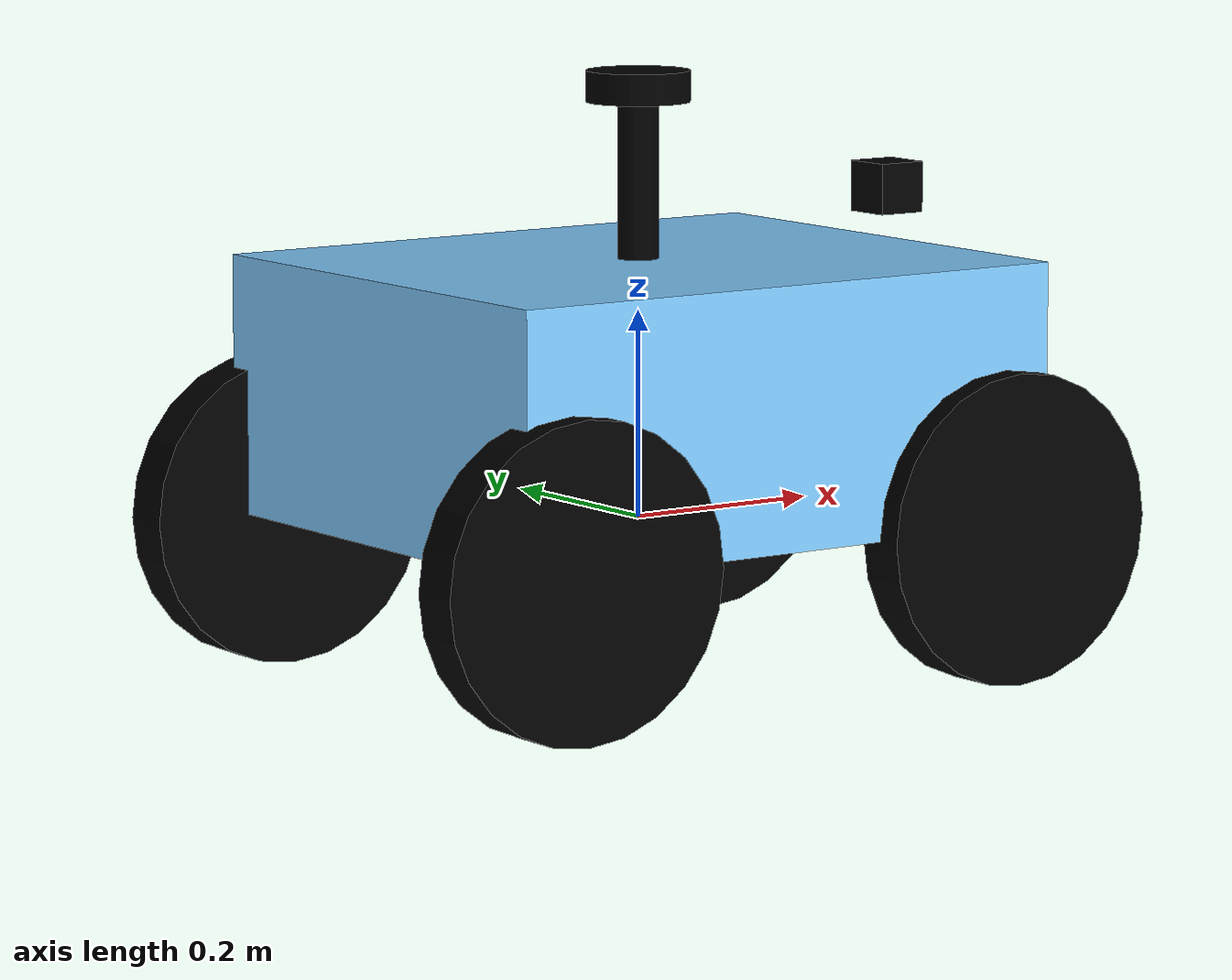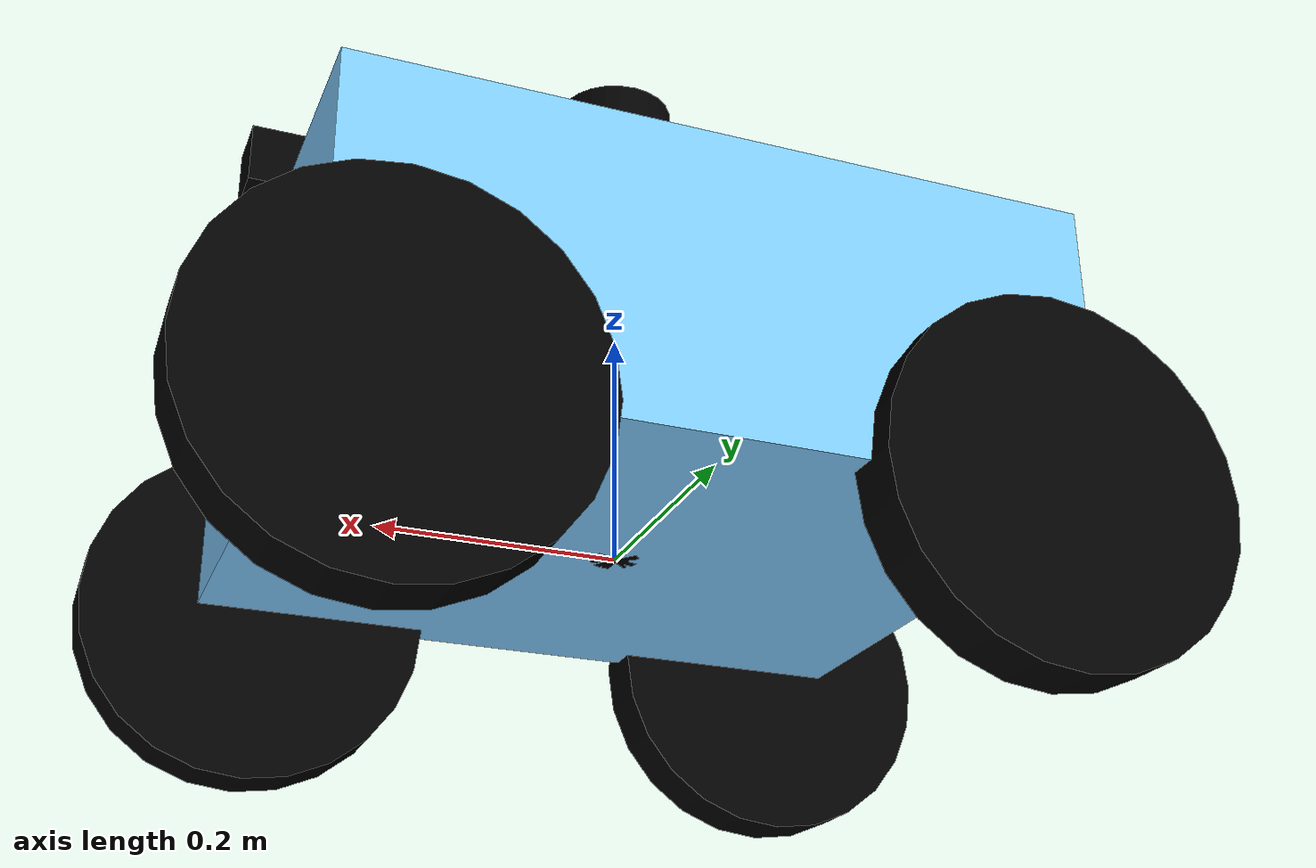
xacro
<?xml version="1.0"?>
<robot xmlns:xacro="http://ros.org/wiki/xacro" name="4wd_robot">

  <!-- Constants -->
  <xacro:property name="wheel_radius" value="0.15"/>
  <xacro:property name="wheel_width" value="0.05"/>
  <xacro:property name="body_length" value="0.6"/>
  <xacro:property name="body_width" value="0.5"/>
  <xacro:property name="body_height" value="0.25"/>

  <!-- Colors -->
  <material name="light_blue">
    <color rgba="0.5 0.8 1.0 1.0"/>
  </material>
  <material name="black">
    <color rgba="0.0 0.0 0.0 1.0"/>
  </material>

  <!-- Base Link -->
  <link name="base_link">
    <visual>
      <geometry>
        <box size="${body_length} ${body_width} ${body_height}"/>
      </geometry>
      <origin xyz="0 0 ${body_height/2}" rpy="0 0 0"/>
      <material name="light_blue"/>
    </visual>
    <collision>
      <geometry>
        <box size="${body_length} ${body_width} ${body_height}"/>
      </geometry>
      <origin xyz="0 0 ${body_height/2}" rpy="0 0 0"/>
    </collision>
    <inertial>
      <mass value="5.0"/>
      <inertia ixx="0.1" ixy="0.0" ixz="0.0" iyy="0.1" iyz="0.0" izz="0.1"/>
    </inertial>
  </link>

  <gazebo reference="base_link">
    <material>Gazebo/Blue</material>
  </gazebo>

  <!-- Wheel Macro -->
  <xacro:macro name="wheel" params="name x y">
    <link name="${name}">
      <visual>
        <geometry>
          <cylinder length="${wheel_width}" radius="${wheel_radius}"/>
        </geometry>
        <origin xyz="0 0 0" rpy="1.5708 0 0"/>
        <material name="black"/>
      </visual>
      <collision>
        <geometry>
          <cylinder length="${wheel_width}" radius="${wheel_radius}"/>
        </geometry>
        <origin xyz="0 0 0" rpy="1.5708 0 0"/>
      </collision>
      <inertial>
        <mass value="0.5"/>
        <inertia ixx="0.01" iyy="0.01" izz="0.01" ixy="0" ixz="0" iyz="0"/>
      </inertial>
    </link>

    <gazebo reference="${name}">
      <material>Gazebo/Black</material>
    </gazebo>

    <joint name="${name}_joint" type="continuous">
      <parent link="base_link"/>
      <child link="${name}"/>
      <origin xyz="${x} ${y} 0" rpy="0 0 0"/>
      <axis xyz="0 1 0"/>
    </joint>

    <transmission name="${name}_trans">
      <type>transmission_interface/SimpleTransmission</type>
      <joint name="${name}_joint">
        <hardwareInterface>hardware_interface/VelocityJointInterface</hardwareInterface>
      </joint>
      <actuator name="${name}_motor">
        <hardwareInterface>hardware_interface/VelocityJointInterface</hardwareInterface>
        <mechanicalReduction>1</mechanicalReduction>
      </actuator>
    </transmission>
  </xacro:macro>

  <!-- Wheels -->
  <xacro:wheel name="front_left_wheel"  x="0.25" y="0.25"/>
  <xacro:wheel name="rear_left_wheel"   x="-0.25" y="0.25"/>
  <xacro:wheel name="front_right_wheel" x="0.25" y="-0.25"/>
  <xacro:wheel name="rear_right_wheel"  x="-0.25" y="-0.25"/>

  <!-- Camera -->
  <link name="camera_link">
    <visual>
      <geometry>
        <box size="0.05 0.05 0.05"/>
      </geometry>
      <origin xyz="0 0 0" rpy="0 0 0"/>
      <material name="black"/>
    </visual>
    <collision>
      <geometry>
        <box size="0.05 0.05 0.05"/>
      </geometry>
      <origin xyz="0 0 0" rpy="0 0 0"/>
    </collision>
    <inertial>
      <mass value="0.1"/>
      <inertia ixx="0.0001" iyy="0.0001" izz="0.0001" ixy="0" ixz="0" iyz="0"/>
    </inertial>
  </link>

  <joint name="camera_joint" type="fixed">
    <parent link="base_link"/>
    <child link="camera_link"/>
    <origin xyz="0.3 0 ${body_height + 0.05}" rpy="0 0 0"/>
  </joint>

  <gazebo reference="camera_link">
    <sensor name="camera_sensor" type="camera">
      <update_rate>30.0</update_rate>
      <always_on>true</always_on>
      <visualize>true</visualize>
      <camera>
        <horizontal_fov>1.3962634</horizontal_fov>
        <image>
          <width>640</width>
          <height>480</height>
          <format>R8G8B8</format>
        </image>
        <clip>
          <near>0.1</near>
          <far>100</far>
        </clip>
      </camera>
      <plugin name="gazebo_ros_camera" filename="libgazebo_ros_camera.so">
        <camera_name>camera</camera_name>
        <image_topic_name>image_raw</image_topic_name>
        <camera_info_topic_name>camera_info</camera_info_topic_name>
        <frame_name>camera_link</frame_name>
      </plugin>
    </sensor>
  </gazebo>

  <!-- LIDAR Stand -->
  <link name="lidar_stand_link">
    <visual>
      <geometry>
        <cylinder radius="0.02" length="0.4"/>
      </geometry>
      <origin xyz="0 0 0.2" rpy="0 0 0"/>
      <material name="black"/>
    </visual>
    <collision>
      <geometry>
        <cylinder radius="0.02" length="0.4"/>
      </geometry>
      <origin xyz="0 0 0.2" rpy="0 0 0"/>
    </collision>
    <inertial>
      <mass value="0.1"/>
      <inertia ixx="0.0005" iyy="0.0005" izz="0.0005" ixy="0" ixz="0" iyz="0"/>
    </inertial>
  </link>

  <joint name="lidar_stand_joint" type="fixed">
    <parent link="base_link"/>
    <child link="lidar_stand_link"/>
    <origin xyz="0 0 0" rpy="0 0 0"/>
  </joint>

  <!-- LIDAR -->
  <link name="lidar_link">
    <visual>
      <geometry>
        <cylinder length="0.03" radius="0.05"/>
      </geometry>
      <origin xyz="0 0 0.015" rpy="0 0 0"/>
      <material name="black"/>
    </visual>
    <collision>
      <geometry>
        <cylinder length="0.03" radius="0.05"/>
      </geometry>
      <origin xyz="0 0 0.015" rpy="0 0 0"/>
    </collision>
    <inertial>
      <mass value="0.2"/>
      <inertia ixx="0.001" iyy="0.001" izz="0.001" ixy="0" ixz="0" iyz="0"/>
    </inertial>
  </link>

  <joint name="lidar_joint" type="fixed">
    <parent link="lidar_stand_link"/>
    <child link="lidar_link"/>
    <origin xyz="0 0 0.4" rpy="0 0 0"/>
  </joint>

  <gazebo reference="lidar_link">
    <sensor name="rotating_lidar" type="ray">
      <update_rate>30.0</update_rate>
      <visualize>true</visualize>
      <always_on>true</always_on>
      <ray>
        <scan>
          <horizontal>
            <samples>360</samples>
            <resolution>1</resolution>
            <min_angle>-1.57</min_angle>
            <max_angle>1.57</max_angle>
          </horizontal>
        </scan>
        <range>
          <min>0.1</min>
          <max>6.0</max>
          <resolution>0.01</resolution>
        </range>
      </ray>
      <plugin name="gazebo_ros_ray_sensor" filename="libgazebo_ros_ray_sensor.so">
        <ros>
          <remapping>~/out:=/lidar_scan</remapping>
        </ros>
        <frame_name>lidar_link</frame_name>
        <output_type>sensor_msgs/LaserScan</output_type>
      </plugin>
    </sensor>
  </gazebo>

  <!-- Diff Drive -->
  <gazebo>
    <plugin name="diff_drive" filename="libgazebo_ros_diff_drive.so">
      <ros>
        <remapping>cmd_vel:=cmd_vel</remapping>
        <remapping>odom:=odom</remapping>
      </ros>
      <left_joint>front_left_wheel_joint</left_joint>
      <right_joint>front_right_wheel_joint</right_joint>
      <wheel_separation>0.5</wheel_separation>
      <wheel_radius>${wheel_radius}</wheel_radius>
      <publish_odom>true</publish_odom>
      <odometry_frame>odom</odometry_frame>
      <robot_base_frame>base_link</robot_base_frame>
      <command_timeout>0.5</command_timeout>
      <publish_wheel_tf>false</publish_wheel_tf>
      <publish_wheel_joint_state>true</publish_wheel_joint_state>
    </plugin>
  </gazebo>

  <!-- Joint State Publisher -->
  <gazebo>
    <plugin name="joint_state_publisher" filename="libgazebo_ros_joint_state_publisher.so">
      <joint_name>front_left_wheel_joint</joint_name>
      <joint_name>rear_left_wheel_joint</joint_name>
      <joint_name>front_right_wheel_joint</joint_name>
      <joint_name>rear_right_wheel_joint</joint_name>
    </plugin>
  </gazebo>

</robot>
